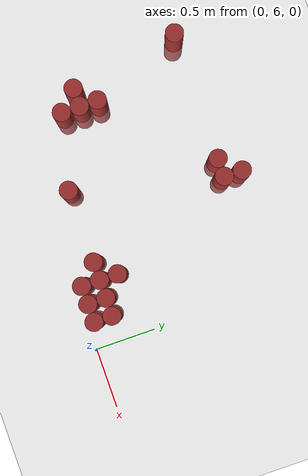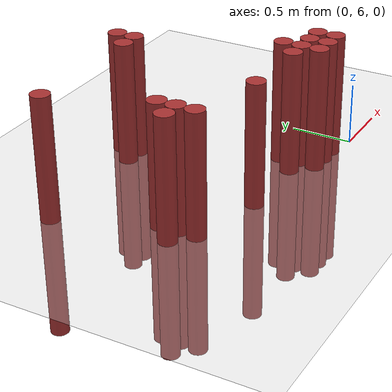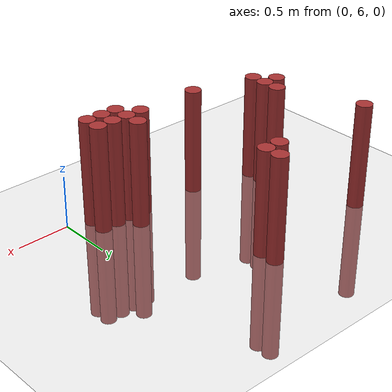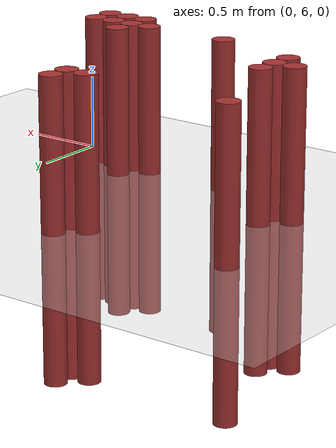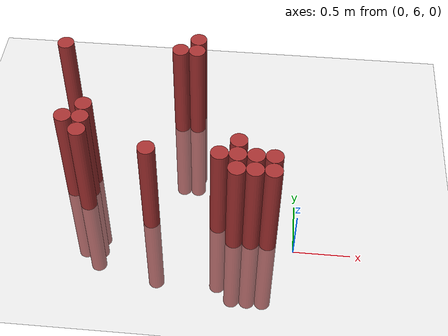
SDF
<sdf version="1.6">
 <world name="default">
  <model name="ground_plane">
   <static>1</static>
   <link name="link">
    <collision name="collision">
     <geometry><plane><normal>0 0 1</normal><size>100 100</size></plane></geometry>
     <surface><friction><ode><mu>100</mu><mu2>50</mu2></ode></friction></surface>
    </collision>
    <visual name="visual">
     <cast_shadows>0</cast_shadows>
     <geometry><plane><normal>0 0 1</normal><size>100 100</size></plane></geometry>
     <material>
      <script><uri>file://media/materials/scripts/gazebo.material</uri><name>Gazebo/Grey</name></script>
     </material>
    </visual>
   </link>
  </model>
  <model name="unit_cylinder_188">
   <static>1</static>
   <pose>-2.175000 7.425000 0.000000 0.000000 0.000000 0.000000</pose>
   <link name="link">
    <inertial>
     <mass>1</mass>
     <inertia><ixx>0.145833</ixx><ixy>0</ixy><ixz>0</ixz><iyy>0.145833</iyy><iyz>0</iyz><izz>0.125</izz></inertia>
    </inertial>
    <collision name="collision">
     <geometry><cylinder><radius>0.075000</radius><length>2</length></cylinder></geometry>
    </collision>
    <visual name="visual">
     <geometry><cylinder><radius>0.075000</radius><length>2</length></cylinder></geometry>
     <material>
      <ambient>0.648000 0.192000 0.192000 1</ambient>
      <diffuse>0.648000 0.192000 0.192000 1</diffuse>
     </material>
     <material>
      <script><name>Gazebo/Grey</name><uri>file://media/materials/scripts/gazebo.material</uri></script>
     </material>
    </visual>
   </link>
  </model>
  <model name="unit_cylinder_192">
   <static>1</static>
   <pose>-2.025000 6.525000 0.000000 0.000000 0.000000 0.000000</pose>
   <link name="link">
    <inertial>
     <mass>1</mass>
     <inertia><ixx>0.145833</ixx><ixy>0</ixy><ixz>0</ixz><iyy>0.145833</iyy><iyz>0</iyz><izz>0.125</izz></inertia>
    </inertial>
    <collision name="collision">
     <geometry><cylinder><radius>0.075000</radius><length>2</length></cylinder></geometry>
    </collision>
    <visual name="visual">
     <geometry><cylinder><radius>0.075000</radius><length>2</length></cylinder></geometry>
     <material>
      <ambient>0.648000 0.192000 0.192000 1</ambient>
      <diffuse>0.648000 0.192000 0.192000 1</diffuse>
     </material>
     <material>
      <script><name>Gazebo/Grey</name><uri>file://media/materials/scripts/gazebo.material</uri></script>
     </material>
    </visual>
   </link>
  </model>
  <model name="unit_cylinder_194">
   <static>1</static>
   <pose>-1.875000 6.375000 0.000000 0.000000 0.000000 0.000000</pose>
   <link name="link">
    <inertial>
     <mass>1</mass>
     <inertia><ixx>0.145833</ixx><ixy>0</ixy><ixz>0</ixz><iyy>0.145833</iyy><iyz>0</iyz><izz>0.125</izz></inertia>
    </inertial>
    <collision name="collision">
     <geometry><cylinder><radius>0.075000</radius><length>2</length></cylinder></geometry>
    </collision>
    <visual name="visual">
     <geometry><cylinder><radius>0.075000</radius><length>2</length></cylinder></geometry>
     <material>
      <ambient>0.648000 0.192000 0.192000 1</ambient>
      <diffuse>0.648000 0.192000 0.192000 1</diffuse>
     </material>
     <material>
      <script><name>Gazebo/Grey</name><uri>file://media/materials/scripts/gazebo.material</uri></script>
     </material>
    </visual>
   </link>
  </model>
  <model name="unit_cylinder_195">
   <static>1</static>
   <pose>-1.875000 6.525000 0.000000 0.000000 0.000000 0.000000</pose>
   <link name="link">
    <inertial>
     <mass>1</mass>
     <inertia><ixx>0.145833</ixx><ixy>0</ixy><ixz>0</ixz><iyy>0.145833</iyy><iyz>0</iyz><izz>0.125</izz></inertia>
    </inertial>
    <collision name="collision">
     <geometry><cylinder><radius>0.075000</radius><length>2</length></cylinder></geometry>
    </collision>
    <visual name="visual">
     <geometry><cylinder><radius>0.075000</radius><length>2</length></cylinder></geometry>
     <material>
      <ambient>0.648000 0.192000 0.192000 1</ambient>
      <diffuse>0.648000 0.192000 0.192000 1</diffuse>
     </material>
     <material>
      <script><name>Gazebo/Grey</name><uri>file://media/materials/scripts/gazebo.material</uri></script>
     </material>
    </visual>
   </link>
  </model>
  <model name="unit_cylinder_196">
   <static>1</static>
   <pose>-1.875000 6.675000 0.000000 0.000000 0.000000 0.000000</pose>
   <link name="link">
    <inertial>
     <mass>1</mass>
     <inertia><ixx>0.145833</ixx><ixy>0</ixy><ixz>0</ixz><iyy>0.145833</iyy><iyz>0</iyz><izz>0.125</izz></inertia>
    </inertial>
    <collision name="collision">
     <geometry><cylinder><radius>0.075000</radius><length>2</length></cylinder></geometry>
    </collision>
    <visual name="visual">
     <geometry><cylinder><radius>0.075000</radius><length>2</length></cylinder></geometry>
     <material>
      <ambient>0.648000 0.192000 0.192000 1</ambient>
      <diffuse>0.648000 0.192000 0.192000 1</diffuse>
     </material>
     <material>
      <script><name>Gazebo/Grey</name><uri>file://media/materials/scripts/gazebo.material</uri></script>
     </material>
    </visual>
   </link>
  </model>
  <model name="unit_cylinder_205">
   <static>1</static>
   <pose>-1.275000 6.225000 0.000000 0.000000 0.000000 0.000000</pose>
   <link name="link">
    <inertial>
     <mass>1</mass>
     <inertia><ixx>0.145833</ixx><ixy>0</ixy><ixz>0</ixz><iyy>0.145833</iyy><iyz>0</iyz><izz>0.125</izz></inertia>
    </inertial>
    <collision name="collision">
     <geometry><cylinder><radius>0.075000</radius><length>2</length></cylinder></geometry>
    </collision>
    <visual name="visual">
     <geometry><cylinder><radius>0.075000</radius><length>2</length></cylinder></geometry>
     <material>
      <ambient>0.648000 0.192000 0.192000 1</ambient>
      <diffuse>0.648000 0.192000 0.192000 1</diffuse>
     </material>
     <material>
      <script><name>Gazebo/Grey</name><uri>file://media/materials/scripts/gazebo.material</uri></script>
     </material>
    </visual>
   </link>
  </model>
  <model name="unit_cylinder_211">
   <static>1</static>
   <pose>-1.125000 7.425000 0.000000 0.000000 0.000000 0.000000</pose>
   <link name="link">
    <inertial>
     <mass>1</mass>
     <inertia><ixx>0.145833</ixx><ixy>0</ixy><ixz>0</ixz><iyy>0.145833</iyy><iyz>0</iyz><izz>0.125</izz></inertia>
    </inertial>
    <collision name="collision">
     <geometry><cylinder><radius>0.075000</radius><length>2</length></cylinder></geometry>
    </collision>
    <visual name="visual">
     <geometry><cylinder><radius>0.075000</radius><length>2</length></cylinder></geometry>
     <material>
      <ambient>0.648000 0.192000 0.192000 1</ambient>
      <diffuse>0.648000 0.192000 0.192000 1</diffuse>
     </material>
     <material>
      <script><name>Gazebo/Grey</name><uri>file://media/materials/scripts/gazebo.material</uri></script>
     </material>
    </visual>
   </link>
  </model>
  <model name="unit_cylinder_217">
   <static>1</static>
   <pose>-0.975000 7.425000 0.000000 0.000000 0.000000 0.000000</pose>
   <link name="link">
    <inertial>
     <mass>1</mass>
     <inertia><ixx>0.145833</ixx><ixy>0</ixy><ixz>0</ixz><iyy>0.145833</iyy><iyz>0</iyz><izz>0.125</izz></inertia>
    </inertial>
    <collision name="collision">
     <geometry><cylinder><radius>0.075000</radius><length>2</length></cylinder></geometry>
    </collision>
    <visual name="visual">
     <geometry><cylinder><radius>0.075000</radius><length>2</length></cylinder></geometry>
     <material>
      <ambient>0.648000 0.192000 0.192000 1</ambient>
      <diffuse>0.648000 0.192000 0.192000 1</diffuse>
     </material>
     <material>
      <script><name>Gazebo/Grey</name><uri>file://media/materials/scripts/gazebo.material</uri></script>
     </material>
    </visual>
   </link>
  </model>
  <model name="unit_cylinder_218">
   <static>1</static>
   <pose>-0.975000 7.575000 0.000000 0.000000 0.000000 0.000000</pose>
   <link name="link">
    <inertial>
     <mass>1</mass>
     <inertia><ixx>0.145833</ixx><ixy>0</ixy><ixz>0</ixz><iyy>0.145833</iyy><iyz>0</iyz><izz>0.125</izz></inertia>
    </inertial>
    <collision name="collision">
     <geometry><cylinder><radius>0.075000</radius><length>2</length></cylinder></geometry>
    </collision>
    <visual name="visual">
     <geometry><cylinder><radius>0.075000</radius><length>2</length></cylinder></geometry>
     <material>
      <ambient>0.648000 0.192000 0.192000 1</ambient>
      <diffuse>0.648000 0.192000 0.192000 1</diffuse>
     </material>
     <material>
      <script><name>Gazebo/Grey</name><uri>file://media/materials/scripts/gazebo.material</uri></script>
     </material>
    </visual>
   </link>
  </model>
  <model name="unit_cylinder_226">
   <static>1</static>
   <pose>-0.675000 6.225000 0.000000 0.000000 0.000000 0.000000</pose>
   <link name="link">
    <inertial>
     <mass>1</mass>
     <inertia><ixx>0.145833</ixx><ixy>0</ixy><ixz>0</ixz><iyy>0.145833</iyy><iyz>0</iyz><izz>0.125</izz></inertia>
    </inertial>
    <collision name="collision">
     <geometry><cylinder><radius>0.075000</radius><length>2</length></cylinder></geometry>
    </collision>
    <visual name="visual">
     <geometry><cylinder><radius>0.075000</radius><length>2</length></cylinder></geometry>
     <material>
      <ambient>0.648000 0.192000 0.192000 1</ambient>
      <diffuse>0.648000 0.192000 0.192000 1</diffuse>
     </material>
     <material>
      <script><name>Gazebo/Grey</name><uri>file://media/materials/scripts/gazebo.material</uri></script>
     </material>
    </visual>
   </link>
  </model>
  <model name="unit_cylinder_227">
   <static>1</static>
   <pose>-0.525000 6.075000 0.000000 0.000000 0.000000 0.000000</pose>
   <link name="link">
    <inertial>
     <mass>1</mass>
     <inertia><ixx>0.145833</ixx><ixy>0</ixy><ixz>0</ixz><iyy>0.145833</iyy><iyz>0</iyz><izz>0.125</izz></inertia>
    </inertial>
    <collision name="collision">
     <geometry><cylinder><radius>0.075000</radius><length>2</length></cylinder></geometry>
    </collision>
    <visual name="visual">
     <geometry><cylinder><radius>0.075000</radius><length>2</length></cylinder></geometry>
     <material>
      <ambient>0.648000 0.192000 0.192000 1</ambient>
      <diffuse>0.648000 0.192000 0.192000 1</diffuse>
     </material>
     <material>
      <script><name>Gazebo/Grey</name><uri>file://media/materials/scripts/gazebo.material</uri></script>
     </material>
    </visual>
   </link>
  </model>
  <model name="unit_cylinder_228">
   <static>1</static>
   <pose>-0.525000 6.225000 0.000000 0.000000 0.000000 0.000000</pose>
   <link name="link">
    <inertial>
     <mass>1</mass>
     <inertia><ixx>0.145833</ixx><ixy>0</ixy><ixz>0</ixz><iyy>0.145833</iyy><iyz>0</iyz><izz>0.125</izz></inertia>
    </inertial>
    <collision name="collision">
     <geometry><cylinder><radius>0.075000</radius><length>2</length></cylinder></geometry>
    </collision>
    <visual name="visual">
     <geometry><cylinder><radius>0.075000</radius><length>2</length></cylinder></geometry>
     <material>
      <ambient>0.648000 0.192000 0.192000 1</ambient>
      <diffuse>0.648000 0.192000 0.192000 1</diffuse>
     </material>
     <material>
      <script><name>Gazebo/Grey</name><uri>file://media/materials/scripts/gazebo.material</uri></script>
     </material>
    </visual>
   </link>
  </model>
  <model name="unit_cylinder_229">
   <static>1</static>
   <pose>-0.525000 6.375000 0.000000 0.000000 0.000000 0.000000</pose>
   <link name="link">
    <inertial>
     <mass>1</mass>
     <inertia><ixx>0.145833</ixx><ixy>0</ixy><ixz>0</ixz><iyy>0.145833</iyy><iyz>0</iyz><izz>0.125</izz></inertia>
    </inertial>
    <collision name="collision">
     <geometry><cylinder><radius>0.075000</radius><length>2</length></cylinder></geometry>
    </collision>
    <visual name="visual">
     <geometry><cylinder><radius>0.075000</radius><length>2</length></cylinder></geometry>
     <material>
      <ambient>0.648000 0.192000 0.192000 1</ambient>
      <diffuse>0.648000 0.192000 0.192000 1</diffuse>
     </material>
     <material>
      <script><name>Gazebo/Grey</name><uri>file://media/materials/scripts/gazebo.material</uri></script>
     </material>
    </visual>
   </link>
  </model>
  <model name="unit_cylinder_230">
   <static>1</static>
   <pose>-0.375000 6.075000 0.000000 0.000000 0.000000 0.000000</pose>
   <link name="link">
    <inertial>
     <mass>1</mass>
     <inertia><ixx>0.145833</ixx><ixy>0</ixy><ixz>0</ixz><iyy>0.145833</iyy><iyz>0</iyz><izz>0.125</izz></inertia>
    </inertial>
    <collision name="collision">
     <geometry><cylinder><radius>0.075000</radius><length>2</length></cylinder></geometry>
    </collision>
    <visual name="visual">
     <geometry><cylinder><radius>0.075000</radius><length>2</length></cylinder></geometry>
     <material>
      <ambient>0.648000 0.192000 0.192000 1</ambient>
      <diffuse>0.648000 0.192000 0.192000 1</diffuse>
     </material>
     <material>
      <script><name>Gazebo/Grey</name><uri>file://media/materials/scripts/gazebo.material</uri></script>
     </material>
    </visual>
   </link>
  </model>
  <model name="unit_cylinder_231">
   <static>1</static>
   <pose>-0.375000 6.225000 0.000000 0.000000 0.000000 0.000000</pose>
   <link name="link">
    <inertial>
     <mass>1</mass>
     <inertia><ixx>0.145833</ixx><ixy>0</ixy><ixz>0</ixz><iyy>0.145833</iyy><iyz>0</iyz><izz>0.125</izz></inertia>
    </inertial>
    <collision name="collision">
     <geometry><cylinder><radius>0.075000</radius><length>2</length></cylinder></geometry>
    </collision>
    <visual name="visual">
     <geometry><cylinder><radius>0.075000</radius><length>2</length></cylinder></geometry>
     <material>
      <ambient>0.648000 0.192000 0.192000 1</ambient>
      <diffuse>0.648000 0.192000 0.192000 1</diffuse>
     </material>
     <material>
      <script><name>Gazebo/Grey</name><uri>file://media/materials/scripts/gazebo.material</uri></script>
     </material>
    </visual>
   </link>
  </model>
  <model name="unit_cylinder_238">
   <static>1</static>
   <pose>-0.225000 6.075000 0.000000 0.000000 0.000000 0.000000</pose>
   <link name="link">
    <inertial>
     <mass>1</mass>
     <inertia><ixx>0.145833</ixx><ixy>0</ixy><ixz>0</ixz><iyy>0.145833</iyy><iyz>0</iyz><izz>0.125</izz></inertia>
    </inertial>
    <collision name="collision">
     <geometry><cylinder><radius>0.075000</radius><length>2</length></cylinder></geometry>
    </collision>
    <visual name="visual">
     <geometry><cylinder><radius>0.075000</radius><length>2</length></cylinder></geometry>
     <material>
      <ambient>0.648000 0.192000 0.192000 1</ambient>
      <diffuse>0.648000 0.192000 0.192000 1</diffuse>
     </material>
     <material>
      <script><name>Gazebo/Grey</name><uri>file://media/materials/scripts/gazebo.material</uri></script>
     </material>
    </visual>
   </link>
  </model>
  <model name="unit_cylinder_239">
   <static>1</static>
   <pose>-0.225000 6.225000 0.000000 0.000000 0.000000 0.000000</pose>
   <link name="link">
    <inertial>
     <mass>1</mass>
     <inertia><ixx>0.145833</ixx><ixy>0</ixy><ixz>0</ixz><iyy>0.145833</iyy><iyz>0</iyz><izz>0.125</izz></inertia>
    </inertial>
    <collision name="collision">
     <geometry><cylinder><radius>0.075000</radius><length>2</length></cylinder></geometry>
    </collision>
    <visual name="visual">
     <geometry><cylinder><radius>0.075000</radius><length>2</length></cylinder></geometry>
     <material>
      <ambient>0.648000 0.192000 0.192000 1</ambient>
      <diffuse>0.648000 0.192000 0.192000 1</diffuse>
     </material>
     <material>
      <script><name>Gazebo/Grey</name><uri>file://media/materials/scripts/gazebo.material</uri></script>
     </material>
    </visual>
   </link>
  </model>
 </world>
</sdf>
